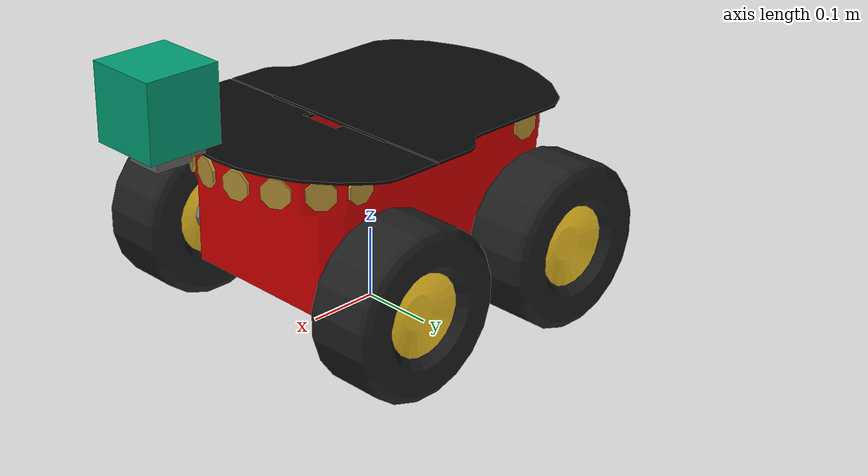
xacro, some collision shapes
<?xml version="1.0"?>

<robot xmlns:sensor="http://playerstage.sourceforge.net/gazebo/xmlschema/#sensor"
       xmlns:controller="http://playerstage.sourceforge.net/gazebo/xmlschema/#controller"
       xmlns:interface="http://playerstage.sourceforge.net/gazebo/xmlschema/#interface"
       xmlns:xacro="http://ros.org/wiki/xacro"
name="pioneer3at">

<include filename="$(find p2os_urdf)/defs/pioneer3at_body.xacro"/>

<xacro:include filename="$(find tedusar_laser_alignment)/urdf/tedusar_laser_alignment.urdf" />

<joint name="base_to_laser_alignment" type="fixed">
        <parent link="base_link" />
        <child link="la_base_link" />
        <origin xyz="0.3 0 0.3" rpy="0 0 0" />
</joint>

<!-- Testing servo motor-->

<!-- This adds the laser macro, including the scan for gazebo and link name -->

  <!-- This adds a visual box to allow us to see the Hokuyo in rviz/gazebo -->

<xacro:p3at_front suffix="left" reflect="1"/>
<xacro:p3at_front suffix="right" reflect="-1"/>
<xacro:p3at_back suffix="left" reflect="1"/>
<xacro:p3at_back suffix="right" reflect="-1"/>
<xacro:p3at_gazebo_ext/>

  <!-- import a Pikachu just for fun. For copyright see: http://www.thingiverse.com/thing:80886 -->
  <!-- Edit: For Copyright see https://github.com/sirikata/sirikata/tree/master/test/unit/libmesh/collada/pikachu -->

</robot>

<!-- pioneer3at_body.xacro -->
<robot xmlns:sensor="http://playerstage.sourceforge.net/gazebo/xmlschema/#sensor"
       xmlns:controller="http://playerstage.sourceforge.net/gazebo/xmlschema/#controller"
       xmlns:interface="http://playerstage.sourceforge.net/gazebo/xmlschema/#interface"
       xmlns:xacro="http://ros.org/wiki/xacro"
>

<!-- Chassis -->
	<link name="base_link">
		<inertial>
			<mass value="10.0"/>
			<origin xyz="0 0 0.177"/>
			<inertia ixx="0.3338" ixy="0.0" ixz="0.0"
				 iyy="0.4783" iyz="0.0"
				 izz="0.3338"/>
		</inertial>
		<visual name="base_visual">
			<origin xyz="0 0 0.177" rpy="0 0 0"/>
			<geometry name="pioneer_geom">
				<mesh filename="package://p2os_urdf/meshes/p3at_meshes/chassis.stl"/>
			</geometry>
			<material name="ChassisRed">
				<color rgba="0.851 0.0 0.0 1.0"/>
			</material>
		</visual>
		<collision>
			<origin xyz="0 0 0.177" rpy="0 0 0"/>
				<geometry>
					<mesh filename="package://p2os_urdf/meshes/p3at_meshes/chassis.stl"/>
				</geometry>
		</collision>
	</link>
	<gazebo reference="base_link">
		<material value="Gazebo/Red"/>
	</gazebo>

<!-- Add base footprint -->
  <link name="base_footprint">
  </link>

  <joint name="base_to_footprint" type="fixed">
    <parent link="base_link"/>
    <child link="base_footprint"/>
    <origin xyz="0 0 0"/>
  </joint>

<!-- Top -->
	<link name="top_plate">
		<inertial>
			<mass value="0.1"/>
			<origin xyz="-0.025 0 -0.223"/>
			<inertia ixx="1.0" ixy="0.0" ixz="0.0"
				 iyy="1.0" iyz="0.0"
 				izz="1.0"/>
		</inertial>
		<visual name="base_visual">
			<origin xyz="0 0 0" rpy="0 0 0"/>
			<geometry name="pioneer_geom">
				<mesh filename="package://p2os_urdf/meshes/p3at_meshes/top.stl"/>
			</geometry>
			<material name="TopBlack">
					<color rgba="0.038 0.038 0.038 1.0"/>
			</material>
		</visual>
		<collision>
			<origin xyz="0 0 0" rpy="0 0 0"/>
			<geometry>
				<box size="0 0 0"/>
			</geometry>
		</collision>
	</link>
	<gazebo reference="top_plate">
		<material value="Gazebo/Black"/>
	</gazebo>

	<joint name="base_top_joint" type="fixed">
		<origin xyz="0.003 0 0.274" rpy="0 0 0"/>
		<parent link="base_link"/>
		<child link="top_plate"/>
	</joint>
<!-- Front + Back Sonar -->
	<link name="front_sonar">
		<inertial>
			<mass value="0.1"/>
			<origin xyz="0 0 0"/>
			<inertia ixx="1.0" ixy="0.0" ixz="0.0"
				 iyy="1.0" iyz="0.0" izz="1.0"/>
		</inertial>
		<visual name="base_visual">
			<origin xyz="0 0 0" rpy="0 0 0"/>
			<geometry name="pioneer_geom">
				<mesh filename="package://p2os_urdf/meshes/p3at_meshes/front_sonar.stl"/>
			</geometry>
			<material name="SonarYellow">
				<color rgba="0.715 0.583 0.210 1.0"/>
			</material>
		</visual>
		<collision>
			<origin xyz="0 0 0" rpy="0 0 0"/>
			<geometry>
				<box size="0 0 0"/>
			</geometry>
		</collision>
	</link>
	<gazebo reference="front_sonar">
		<material value="Gazebo/Yellow"/>
	</gazebo>

	<joint name="base_front_joint" type="fixed">
		<origin xyz="0.193 0 0.25" rpy="0 0 0"/>
		<parent link="base_link"/>
		<child link="front_sonar"/>
	</joint>

	<link name="back_sonar">
		<inertial>
			<mass value="0.1"/>
			<origin xyz="0 0 0"/>
			<inertia ixx="1.0" ixy="0.0" ixz="0.0"
				 iyy="1.0" iyz="0.0" izz="1.0"/>
		</inertial>
		<visual name="base_visual">
			<origin xyz="0 0 0" rpy="0 0 0"/>
			<geometry name="pioneer_geom">
				<mesh filename="package://p2os_urdf/meshes/p3at_meshes/back_sonar.stl"/>
			</geometry>
			<material name="SonarYellow">
				<color rgba="0.715 0.583 0.210 1.0"/>
			</material>
		</visual>
		<collision>
			<origin xyz="0 0 0" rpy="0 0 0"/>
			<geometry>
				<box size="0 0 0"/>
			</geometry>
		</collision>
	</link>
	<gazebo reference="back_sonar">
		<material value="Gazebo/Yellow"/>
	</gazebo>

	<joint name="base_back_joint" type="fixed">
		<origin xyz="-0.187 0 0.247" rpy="0 0 0"/>
		<parent link="base_link"/>
		<child link="back_sonar"/>
	</joint>

<!-- Front Axles + Wheels + Hubcaps -->
<xacro:macro name="p3at_front" params="suffix reflect">
	<link name="p3at_front_${suffix}_axle">
		<inertial>
			<mass value="0.1"/>
			<origin xyz="0 0 0"/>
			<inertia ixx="1.0" ixy="0.0" ixz="0.0"
				 iyy="1.0" iyz="0.0" izz="1.0"/>
  	 	</inertial>
	<visual name="base_visual">
		<origin xyz="0 0 0" rpy="0 0 0"/>
		<geometry name="pioneer_geom">
			<mesh filename="package://p2os_urdf/meshes/p3at_meshes/axle.stl"/>
		</geometry>
		<material name="AxleGrey">
			<color rgba="0.5 0.5 0.5 1"/>
		</material>
	</visual>
	<collision>
		<origin xyz="0 0 0" rpy="0 0 0"/>
		<geometry>
			<box size="0 0 0"/>
		</geometry>
	</collision>
	</link>
	<gazebo reference="p3at_front_${suffix}_axle">
		<material value="Gazebo/Grey"/>
	</gazebo>

	<joint name="base_front_${suffix}_axle_joint" type="fixed">
		<origin xyz="0.135 ${reflect*0.156} 0.111" rpy="0 0 0"/>
		<parent link="base_link"/>
		<child link="p3at_front_${suffix}_axle"/>
	</joint>

	<link name="p3at_front_${suffix}_hub">
		<inertial>
			<mass value="0.1"/>
			<origin xyz="0 0 0"/>
			<inertia ixx="1.0" ixy="0.0" ixz="0.0"
				 iyy="1.0" iyz="0.0" izz="1.0"/>
  	 	</inertial>
	<visual name="base_visual">
		<origin xyz="0 0 0" rpy="0 0 0"/>
		<geometry name="pioneer_geom">
			<mesh filename="package://p2os_urdf/meshes/p3at_meshes/${suffix}_hubcap.stl"/>
		</geometry>
		<material name="HubcapYellow">
			<color rgba="1.0 0.811 0.151 1.0"/>
		</material>
	</visual>
	<collision>
		<origin xyz="0 0 0" rpy="0 0 0"/>
		<geometry>
			<box size="0 0 0"/>
		</geometry>
	</collision>
	</link>
	<gazebo reference="p3at_front_${suffix}_hub">
		<material value="Gazebo/Yellow"/>
	</gazebo>

	<joint name="base_front_${suffix}_hub_joint" type="fixed">
		<origin xyz="0 ${reflect*0.041} 0" rpy="0 0 0"/>
		<parent link="p3at_front_${suffix}_axle"/>
		<child link="p3at_front_${suffix}_hub"/>
	</joint>

	<link name="p3at_front_${suffix}_wheel">
		<inertial>
			<mass value="0.5"/>
			<origin xyz="0 0 0"/>
			<inertia ixx="0.012411765597" ixy="0" ixz="0"
         iyy="0.015218160428" iyz="0" izz="0.011763977943"/>
      </inertial>
	<visual name="base_visual">
		<origin xyz="0 0 0" rpy="0 0 0"/>
		<geometry name="pioneer_geom">
			<mesh filename="package://p2os_urdf/meshes/p3at_meshes/wheel.stl"/>
		</geometry>
		<material name="WheelBlack">
			<color rgba="0.117 0.117 0.117 1"/>
		</material>
	</visual>
	<collision>
		<origin xyz="0 0 0" rpy="${-3.1415927/2} 0 0"/>
		<geometry>
	    <!--mesh filename="package://p2os_urdf/meshes/p3at_meshes/wheel.stl"/-->
	    <cylinder radius="0.111" length="0.075"/>
		</geometry>
	</collision>
	</link>
	<gazebo reference="p3at_front_${suffix}_wheel">
		<material value="Gazebo/Black"/>
	</gazebo>

	<joint name="p3at_front_${suffix}_wheel_joint" type="continuous">
  	<axis xyz="0 1 0"/>
    <anchor xyz="0 0 0"/>
    <limit effort="100" velocity="100" />
    <joint_properties damping="0.7"/>
		<origin xyz="0 0 0" rpy="0 0 0"/>
		<parent link="p3at_front_${suffix}_hub"/>
		<child link="p3at_front_${suffix}_wheel"/>
	</joint>
</xacro:macro>
<!-- Back Axles + Wheels + Hubcaps -->
<xacro:macro name="p3at_back" params="suffix reflect">
	<link name="p3at_back_${suffix}_axle">
		<inertial>
			<mass value="0.1"/>
			<origin xyz="0 0 0"/>
			<inertia ixx="1.0" ixy="0.0" ixz="0.0"
				 iyy="1.0" iyz="0.0" izz="1.0"/>
  	 	</inertial>
	<visual name="base_visual">
		<origin xyz="0 0 0" rpy="0 0 0"/>
		<geometry name="pioneer_geom">
			<mesh filename="package://p2os_urdf/meshes/p3at_meshes/axle.stl"/>
		</geometry>
		<material name="AxleGrey">
			<color rgba="0.5 0.5 0.5 1"/>
		</material>
	</visual>
	<collision>
		<origin xyz="0 0 0" rpy="0 0 0"/>
		<geometry>
			<mesh filename="package://p2os_urdf/meshes/p3at_meshes/axle.stl"/>
		</geometry>
	</collision>
	</link>
	<gazebo reference="p3at_back_${suffix}_axle">
		<material value="Gazebo/Grey"/>
	</gazebo>

	<joint name="bp3at_back_${suffix}_axle_joint" type="fixed">
		<origin xyz="-0.134 ${reflect*0.156} 0.111" rpy="0 0 0"/>
		<parent link="base_link"/>
		<child link="p3at_back_${suffix}_axle"/>
	</joint>

	<link name="p3at_back_${suffix}_hub">
		<inertial>
			<mass value="0.1"/>
			<origin xyz="0 0 0"/>
			<inertia ixx="1.0" ixy="0.0" ixz="0.0"
				 iyy="1.0" iyz="0.0" izz="1.0"/>
  	 	</inertial>
	<visual name="base_visual">
		<origin xyz="0 0 0" rpy="0 0 0"/>
		<geometry name="pioneer_geom">
			<mesh filename="package://p2os_urdf/meshes/p3at_meshes/${suffix}_hubcap.stl"/>
		</geometry>
		<material name="HubcapYellow"/>
	</visual>
	<collision>
		<origin xyz="0 0 0" rpy="0 0 0"/>
		<geometry>
			<mesh filename="package://p2os_urdf/meshes/p3at_meshes/${suffix}_hubcap.stl"/>
		</geometry>
	</collision>
	</link>
	<gazebo reference="p3at_back_${suffix}_hub">
		<material value="Gazebo/Yellow"/>
	</gazebo>

	<joint name="p3at_back_${suffix}_hub_joint" type="fixed">
		<origin xyz="-0 ${reflect*0.041} 0" rpy="0 0 0"/>
		<parent link="p3at_back_${suffix}_axle"/>
		<child link="p3at_back_${suffix}_hub"/>
	</joint>

	<link name="p3at_back_${suffix}_wheel">
		<inertial>
			<mass value="0.5"/>
			<origin xyz="0 0 0"/>
			<inertia ixx="0.012411765597" ixy="0" ixz="0"
         iyy="0.015218160428" iyz="0" izz="0.011763977943"/>
      </inertial>
	<visual name="base_visual">
		<origin xyz="0 0 0" rpy="0 0 0"/>
		<geometry name="pioneer_geom">
			<mesh filename="package://p2os_urdf/meshes/p3at_meshes/wheel.stl"/>
		</geometry>
		<material name="WheelBlack"/>
	</visual>
	<collision>
		<origin xyz="0 0 0" rpy="${-3.1415927/2} 0 0"/>
		<geometry>
	    <!--mesh filename="package://p2os_urdf/meshes/p3at_meshes/wheel.stl"/-->
	    <cylinder radius="0.111" length="0.075"/>
		</geometry>
	</collision>
	</link>
	<gazebo reference="p3at_back_${suffix}_wheel">
		<material value="Gazebo/Black"/>
	</gazebo>

	<joint name="p3at_back_${suffix}_wheel_joint" type="continuous">
	  <axis xyz="0 1 0"/>
    <anchor xyz="0 0 0"/>
    <limit effort="100" velocity="100" />
    <joint_properties damping="0.7"/>
		<origin xyz="0 0 0" rpy="0 0 0"/>
		<parent link="p3at_back_${suffix}_hub"/>
		<child link="p3at_back_${suffix}_wheel"/>
	</joint>

  <gazebo reference="p3at_back_${suffix}_wheel">
    <kp>1000000.0</kp> <!-- kp and kd for rubber -->
    <kd>100.0</kd>
    <mu1>10.0</mu1>
    <mu2>1.0</mu2>
    <fdir1>0 1 0</fdir1> <!-- is this correct? -->
    <maxVel>1.0</maxVel>
    <minDepth>0.00</minDepth>
  </gazebo>

  <gazebo reference="p3at_front_${suffix}_wheel">
    <kp>1000000.0</kp> <!-- kp and kd for rubber -->
    <kd>100.0</kd>
    <mu1>10.0</mu1>
    <mu2>1.0</mu2>
    <fdir1>0 1 0</fdir1> <!-- is this correct? -->
    <maxVel>1.0</maxVel>
    <minDepth>0.00</minDepth>
  </gazebo>

</xacro:macro>

<xacro:macro name="p3at_gazebo_ext">

<gazebo>
  <plugin name="skid_steer_drive_controller" filename="libgazebo_ros_skid_steer_drive.so">
    <updateRate>100.0</updateRate>
    <robotNamespace>/</robotNamespace>
    <leftFrontJoint>p3at_front_left_wheel_joint</leftFrontJoint>
    <rightFrontJoint>p3at_front_right_wheel_joint</rightFrontJoint>
    <leftRearJoint>p3at_back_left_wheel_joint</leftRearJoint>
    <rightRearJoint>p3at_back_right_wheel_joint</rightRearJoint>
    <wheelSeparation>0.4</wheelSeparation>
    <wheelDiameter>0.215</wheelDiameter>
    <robotBaseFrame>base_link</robotBaseFrame>
    <torque>200</torque>
    <topicName>cmd_vel</topicName>
	<odometryTopic>odom</odometryTopic>
	<odometryFrame>odom</odometryFrame>
  </plugin>
</gazebo>

<gazebo>
	<plugin name="imu_controller" filename="libhector_gazebo_ros_imu.so">
		<robotNamespace>/</robotNamespace>
		<updateRate>50.0</updateRate>
		<bodyName>base_link</bodyName>
		<topicName>imu_data</topicName>
		<accelDrift>0.02 0.02 0.02</accelDrift>
		<accelGaussianNoise>0.02 0.02 0.02</accelGaussianNoise>
		<rateDrift>0.02 0.02 0.02</rateDrift>
		<rateGaussianNoise>0.02 0.02 0.02 </rateGaussianNoise>
		<headingDrift>0.02</headingDrift>
		<headingGaussianNoise>0.02</headingGaussianNoise>
	</plugin>
</gazebo>

<gazebo reference="base_link">
      <sensor type="wireless_receiver" name="wireless">
        <always_on>1</always_on>
        <visualize>1</visualize>
        <update_rate>100.0</update_rate>
         <transceiver>
           <min_frequency>2412.0</min_frequency>
           <max_frequency>2484.0</max_frequency>
           <power>1.5</power>
           <gain>1.5</gain>
           <sensitivity>-90.0</sensitivity>`
        </transceiver>

        <plugin name="gazebo_ros_wireless_controller" filename="libhector_gazebo_ros_wireless_receiver.so">
          <topicName>wireless</topicName>
          <frameId>wireless_link</frameId>
          <rssDrift>0</rssDrift>
          <rssGaussianNoise>0.0</rssGaussianNoise>
          <AoADrift>0 0 0</AoADrift>
          <AoAGaussianNoise>0.00 0.00 0.00</AoAGaussianNoise>
        </plugin>
      </sensor>
</gazebo>

</xacro:macro>

</robot>

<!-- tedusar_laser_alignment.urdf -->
<robot name="tedusar_laser_alignment">

    <link name="la_base_link" >
        <visual>
            <geometry>
                <box size="0.03 0.04 0.08"/>
            </geometry>
            <material name="light_gray">
                <color rgba="0.4 0.4 0.4 1.0"/>
            </material>
            <origin rpy="0 0 0" xyz="0 0 0.04"/>
        </visual>
        <collision>
            <geometry>
                <box size="0.03 0.04 0.08"/>
            </geometry>
            <material name="light_gray">
                <color rgba="0.4 0.4 0.4 1.0"/>
            </material>
            <origin rpy="0 0 0" xyz="0 0 0.04"/>
        </collision>
	<inertial>
		<mass value="0.3"/>
		<inertia ixx="0.01" ixy="0.0" ixz="0.0" iyy="0.02" iyz="0.0" izz="0.01"/>
      		<origin rpy="0 0 0" xyz="0 0 0"/><!--Center of mass -->
	</inertial>-->
    </link>

    <link name="la_servo1" >
        <visual>
            <geometry>
                <box size="0.035 0.035 0.05"/>
            </geometry>
            <material name="gray">
                <color rgba="0.2 0.2 0.2 1.0"/>
            </material>
            <origin rpy="0 0 0" xyz="-0.0175 0 -0.01"/>
        </visual>
        <collision>
            <geometry>
                <box size="0.035 0.035 0.05"/>
            </geometry>
            <material name="gray">
                <color rgba="0.2 0.2 0.2 1.0"/>
            </material>
            <origin rpy="0 0 0" xyz="-0.0175 0 -0.01"/>
        </collision>
    <inertial>
      <mass value="0.25"/><!-- kg -->
      <inertia ixx="0.01" ixy="0.0" ixz="0.0" iyy="0.02" iyz="0.0" izz="0.01"/>
      <origin rpy="0 0 0" xyz="0 0 0"/>
    </inertial><!--Center of mass -->
    </link>

    <link name="la_servo1_roll" />

    <link name="la_platform" >
        <visual>
            <geometry>
                <box size="0.050 0.050 0.035"/>
            </geometry>
            <material name="light_gray"/>
            <origin rpy="0 0 0" xyz="0 0 0.01"/>
        </visual>
        <collision>
            <geometry>
                <box size="0.050 0.050 0.005"/>
            </geometry>
            <material name="light_gray"/>
            <origin rpy="0 0 0" xyz="0 0 0.01"/>
        </collision>
    <inertial>
      <mass value="0.25"/><!-- kg -->
      <inertia ixx="0.01" ixy="0.0" ixz="0.0" iyy="0.02" iyz="0.0" izz="0.01"/>
      <origin rpy="0 0 0" xyz="0 0 0"/><!--Center of mass -->
    </inertial>
    </link>

    <link name="la_laser" >
        <visual>
            <geometry>
                <cylinder length="0.007" radius="0.03"/>
            </geometry>
            <material name="red">
                <color rgba="0.8 0.3 0.2 1.0"/>
            </material>
            <origin rpy="0 0 0" xyz="0 0 -0.018"/>
        </visual>
        <collision>
            <geometry>
                <cylinder length="0.07" radius="0.03"/>
            </geometry>
            <material name="red">
                <color rgba="0.8 0.3 0.2 1.0"/>
            </material>
            <origin rpy="0 0 0" xyz="0 0 -0.018"/>
        </collision>
    <inertial>
      <mass value="0.4"/><!-- kg -->
      <inertia ixx="0.01" ixy="0.0" ixz="0.0" iyy="0.02" iyz="0.0" izz="0.01"/>
      <origin rpy="0 0 0" xyz="0 0 0"/><!--Center of mass -->
    </inertial>
    </link>

    <joint name="la_base_to_servo1" type="fixed">
        <parent link="la_base_link"/>
        <child link="la_servo1"/>
        <origin xyz="0 0 0.07" rpy="0 0 0"/>
    </joint>

    <joint name="la_roll_joint" type="continuous">
        <parent link="la_servo1"/>
        <child link="la_servo1_roll"/>
        <origin xyz="0 0.0 0" rpy="0 0 0"/>
        <limit effort="35" velocity="10"/>
        <joint_properties damping="30.0" friction="30.0"/>
    </joint>

    <transmission name="tran1">
        <type>transmission_interface/SimpleTransmission</type>
        <joint name="la_roll_joint">
            <hardwareInterface>EffortJointInterface</hardwareInterface>
        </joint>
        <actuator name="motor1">
            <hardwareInterface>EffortJointInterface</hardwareInterface>
            <mechanicalReduction>1</mechanicalReduction>
        </actuator>
        <mechanicalReduction>1</mechanicalReduction>
        <motorTorqueConstant>1</motorTorqueConstant>
    </transmission>

    <gazebo>
        <plugin name="gazebo_ros_control" filename="libgazebo_ros_control.so">
            <robotNamespace>/p3at</robotNamespace>
        </plugin>
    </gazebo>

    <joint name="la_servo1_roll_la_platform" type="fixed">
        <parent link="la_servo1_roll"/>
        <child link="la_platform"/>
        <origin xyz="0.035 0 -0.065" rpy="0 0 0"/>
    </joint>

    <joint name="la_platform_to_laser" type="fixed">
        <parent link="la_platform"/>
        <child link="la_laser"/>
        <origin xyz="0 0 0.066" rpy="0 0 -0.01"/>
    </joint>

    <gazebo>
    </gazebo>

    <joint name="hokuyo_joint" type="fixed">
    <axis xyz="0 1 0" />
    <origin xyz="0 0 0" rpy="0 0 0"/>
    <parent link="la_laser"/>
    <child link="hokuyo_link"/>
  </joint>

  <!-- Hokuyo Laser -->
  <link name="hokuyo_link">
    <collision>
      <origin xyz="0 0 0" rpy="0 0 0"/>
      <geometry>
    <box size="0.1 0.1 0.1"/>
      </geometry>
    </collision>

    <visual>
      <origin xyz="0 0 0" rpy="0 0 0"/>
      <geometry>
        <mesh filename="package://rrbot_description/meshes/hokuyo.dae"/>
      </geometry>
    </visual>

    <inertial>
      <mass value="1e-5" />
      <origin xyz="0 0 0" rpy="0 0 0"/>
      <inertia ixx="1e-6" ixy="0" ixz="0" iyy="1e-6" iyz="0" izz="1e-6" />
    </inertial>
  </link>

<!-- hokuyo -->
  <gazebo reference="hokuyo_link">
    <sensor type="ray" name="head_hokuyo_sensor">
      <pose>0 0 0 0 0 0</pose>
      <visualize>true</visualize>
      <update_rate>40</update_rate>
      <ray>
        <scan>
          <horizontal>
            <samples>720</samples>
            <resolution>1</resolution>
            <min_angle>-2.35</min_angle> <!-- 270 degree angle -->
            <max_angle>2.35</max_angle>
          </horizontal>
        </scan>
        <range>
          <min>0.10</min>
          <max>20.0</max>
          <resolution>0.01</resolution>
        </range>
        <noise>
          <type>gaussian</type>
          <mean>0.0</mean>
          <stddev>0.01</stddev>
        </noise>
      </ray>
      <plugin name="gazebo_ros_head_hokuyo_controller" filename="libgazebo_ros_laser.so">
        <topicName>/laser/scan</topicName>
        <frameName>hokuyo_link</frameName>
      </plugin>
    </sensor>
  </gazebo>

<!-- testing gazebo imu -->
  <joint name="imu_joint" type="fixed">
      <axis xyz="0 1 0"/>
      <origin xyz="0 0 0.19"/>
      <parent link="base_link"/>
      <child link="imu_link"/>
  </joint>

  <link name="imu_link">
    <inertial>
      <mass value="0.001"/>
      <origin rpy="0 0 0" xyz="0 0 0"/>
      <inertia ixx="0.0001" ixy="0" ixz="0" iyy="0.000001" iyz="0" izz="0.0001"/>
    </inertial>
    <visual>
      <origin rpy="0 0 0" xyz="0 0 0"/>
      <geometry>
        <box size="0.001 0.001 0.001"/>
      </geometry>
    </visual>
    <collision>
      <origin rpy="0 0 0" xyz="0 0 0"/>
      <geometry>
        <box size=".001 .001 .001"/>
      </geometry>
    </collision>
  </link>

</robot>
